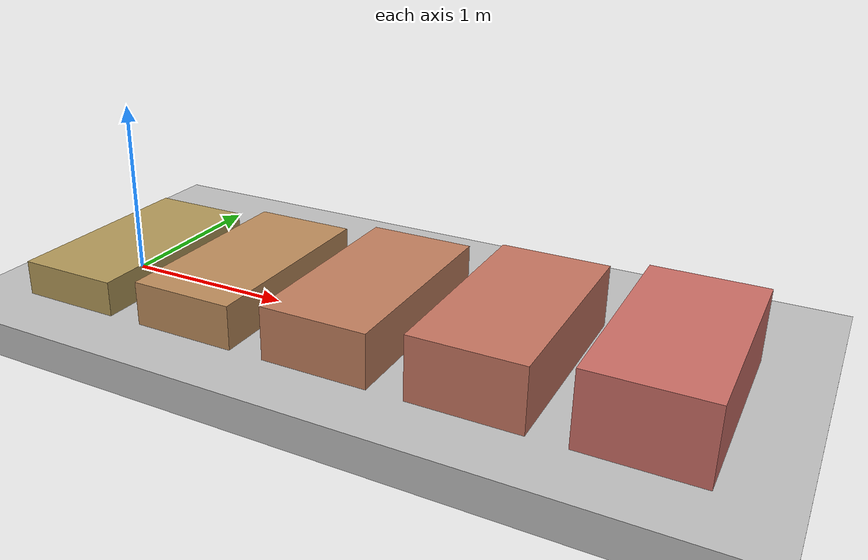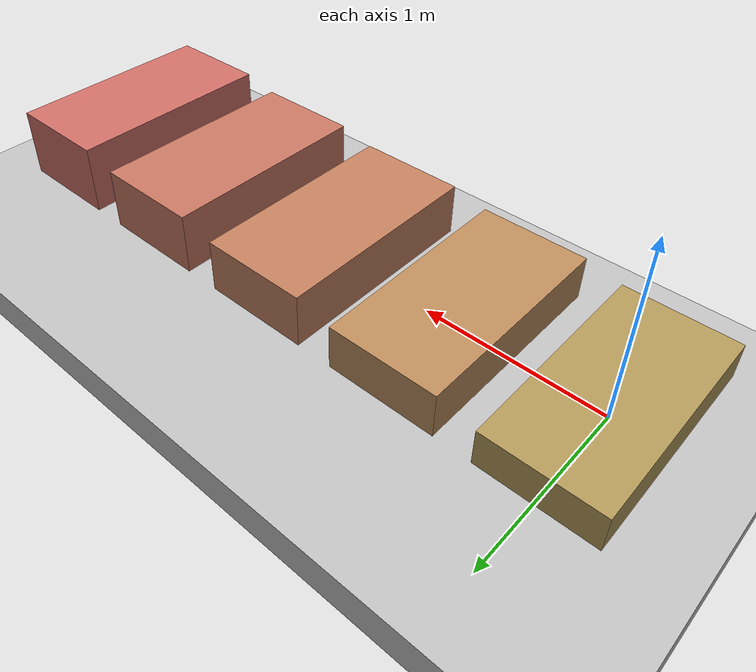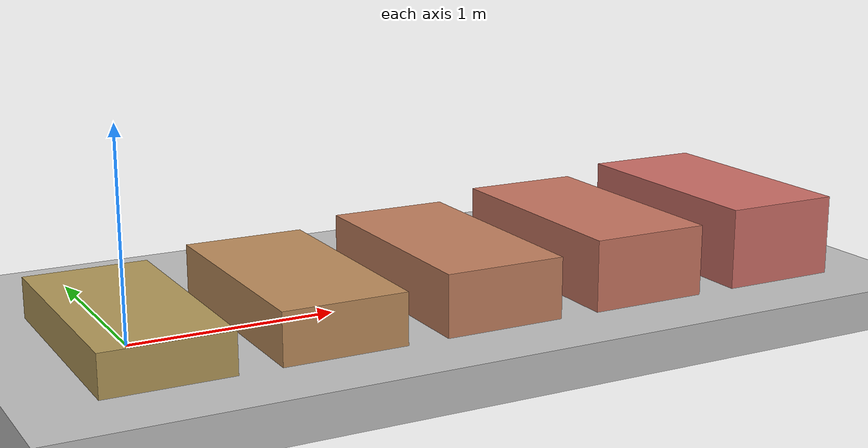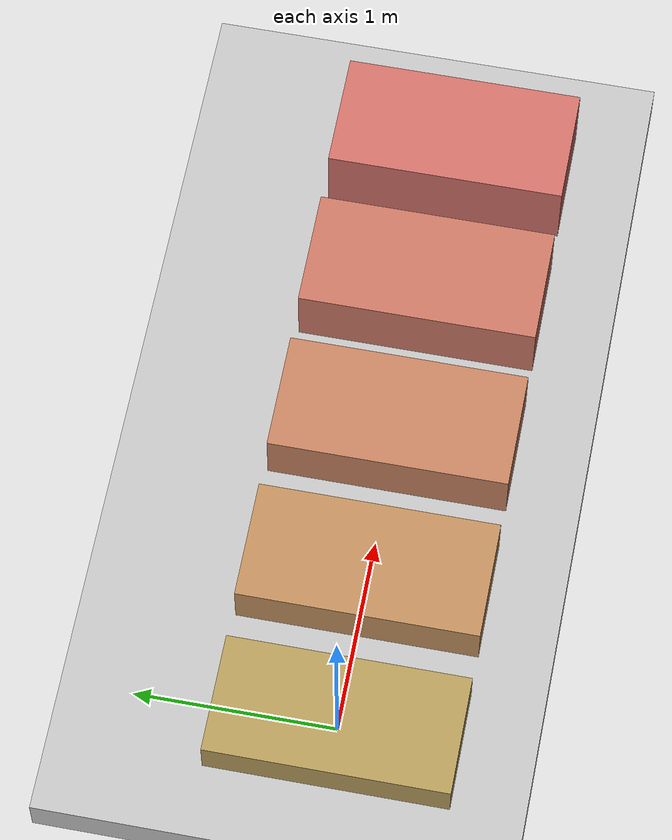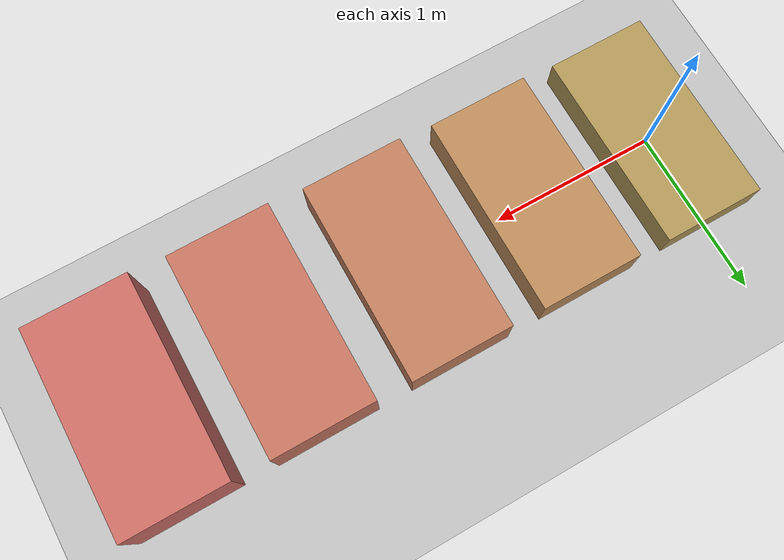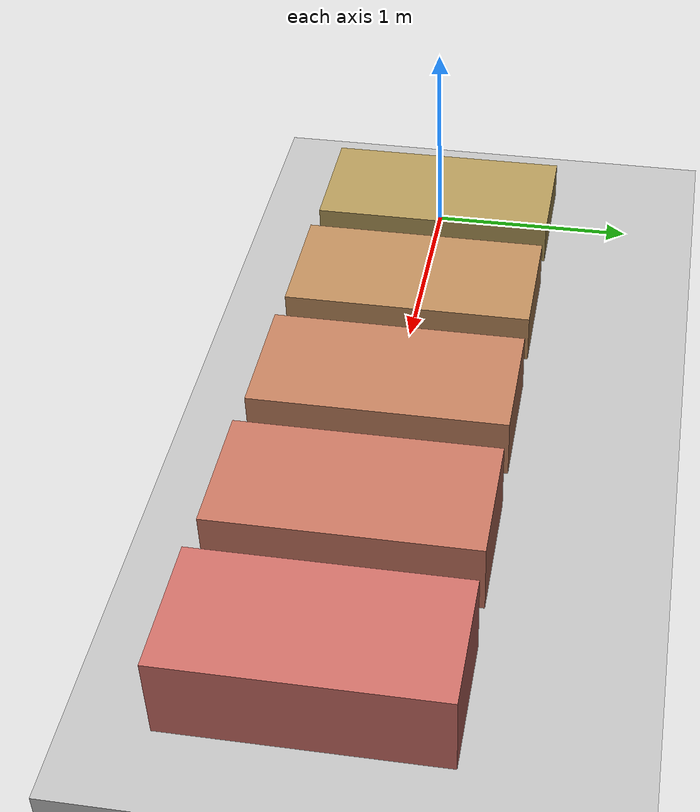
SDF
<?xml version="1.0" ?>
<sdf version="1.6">
  <world name="room_with_obstacles">
    <physics name="1ms" type="ignored">
      <max_step_size>0.005</max_step_size>
      <real_time_factor>1.0</real_time_factor>
    </physics>

    <plugin filename="gz-sim-physics-system" name="gz::sim::systems::Physics"/>
    <plugin filename="gz-sim-user-commands-system" name="gz::sim::systems::UserCommands"/>
    <plugin filename="gz-sim-scene-broadcaster-system" name="gz::sim::systems::SceneBroadcaster"/>
    <plugin filename="gz-sim-contact-system" name="gz::sim::systems::Contact"/>
    <plugin filename="gz-sim-sensors-system" name="gz::sim::systems::Sensors"/>

    <light type="directional" name="sun">
      <cast_shadows>true</cast_shadows>
      <pose>0 0 10 0 0 0</pose>
      <diffuse>0.8 0.8 0.8 1</diffuse>
      <specular>0.2 0.2 0.2 1</specular>
      <attenuation>
        <range>1000</range>
        <constant>0.9</constant>
        <linear>0.01</linear>
        <quadratic>0.001</quadratic>
      </attenuation>
      <direction>-0.5 0.1 -0.9</direction>
    </light>

    <!-- 房间地板：中心 (0,0)，10m x 8m，带网格感浅灰 -->
    <model name="room_floor">
      <static>true</static>
      <pose>0 0 -0.1 0 0 0</pose>
      <link name="link">
        <collision name="collision">
          <geometry>
            <box>
              <size>10 8 0.2</size>
            </box>
          </geometry>
        </collision>
        <visual name="visual">
          <geometry>
            <box>
              <size>10 8 0.2</size>
            </box>
          </geometry>
          <material>
            <ambient>0.75 0.75 0.75 1</ambient>
            <diffuse>0.75 0.75 0.75 1</diffuse>
            <specular>0.15 0.15 0.15 1</specular>
          </material>
        </visual>
      </link>
    </model>

    <model name="platform_step_1">
      <static>true</static>
      <pose>0.0 0 0.1 0 0 0</pose>
      <link name="link">
        <collision name="collision">
          <geometry>
            <box>
              <size>0.6 1.2 0.2</size>
            </box>
          </geometry>
        </collision>
        <visual name="visual">
          <geometry>
            <box>
              <size>0.6 1.2 0.2</size>
            </box>
          </geometry>
          <material>
            <ambient>0.7 0.6 0.35 1</ambient>
            <diffuse>0.7 0.6 0.35 1</diffuse>
            <specular>0.2 0.2 0.2 1</specular>
          </material>
        </visual>
      </link>
    </model>

    <model name="platform_step_2">
      <static>true</static>
      <pose>0.8 0 0.125 0 0 0</pose>
      <link name="link">
        <collision name="collision">
          <geometry>
            <box>
              <size>0.6 1.2 0.25</size>
            </box>
          </geometry>
        </collision>
        <visual name="visual">
          <geometry>
            <box>
              <size>0.6 1.2 0.25</size>
            </box>
          </geometry>
          <material>
            <ambient>0.74 0.55 0.36 1</ambient>
            <diffuse>0.74 0.55 0.36 1</diffuse>
            <specular>0.2 0.2 0.2 1</specular>
          </material>
        </visual>
      </link>
    </model>

    <model name="platform_step_3">
      <static>true</static>
      <pose>1.6 0 0.15 0 0 0</pose>
      <link name="link">
        <collision name="collision">
          <geometry>
            <box>
              <size>0.6 1.2 0.3</size>
            </box>
          </geometry>
        </collision>
        <visual name="visual">
          <geometry>
            <box>
              <size>0.6 1.2 0.3</size>
            </box>
          </geometry>
          <material>
            <ambient>0.76 0.5 0.37 1</ambient>
            <diffuse>0.76 0.5 0.37 1</diffuse>
            <specular>0.2 0.2 0.2 1</specular>
          </material>
        </visual>
      </link>
    </model>

    <model name="platform_step_4">
      <static>true</static>
      <pose>2.4 0 0.175 0 0 0</pose>
      <link name="link">
        <collision name="collision">
          <geometry>
            <box>
              <size>0.6 1.2 0.35</size>
            </box>
          </geometry>
        </collision>
        <visual name="visual">
          <geometry>
            <box>
              <size>0.6 1.2 0.35</size>
            </box>
          </geometry>
          <material>
            <ambient>0.78 0.46 0.38 1</ambient>
            <diffuse>0.78 0.46 0.38 1</diffuse>
            <specular>0.2 0.2 0.2 1</specular>
          </material>
        </visual>
      </link>
    </model>

    <model name="platform_step_5">
      <static>true</static>
      <pose>3.2 0 0.2 0 0 0</pose>
      <link name="link">
        <collision name="collision">
          <geometry>
            <box>
              <size>0.6 1.2 0.4</size>
            </box>
          </geometry>
        </collision>
        <visual name="visual">
          <geometry>
            <box>
              <size>0.6 1.2 0.4</size>
            </box>
          </geometry>
          <material>
            <ambient>0.8 0.43 0.4 1</ambient>
            <diffuse>0.8 0.43 0.4 1</diffuse>
            <specular>0.2 0.2 0.2 1</specular>
          </material>
        </visual>
      </link>
    </model>
  </world>
</sdf>
